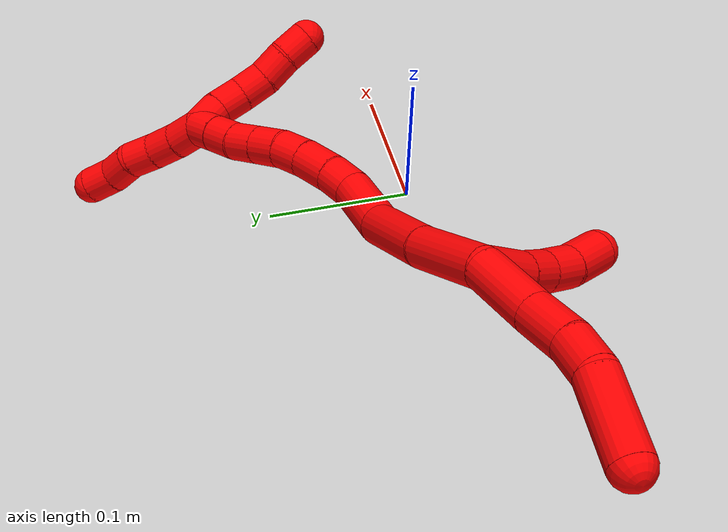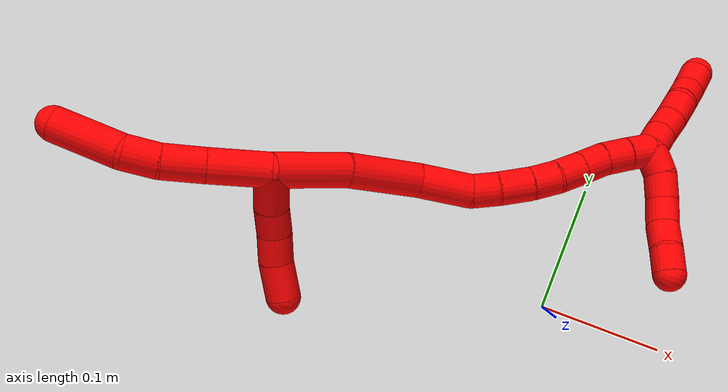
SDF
<sdf version="1.7">
 <world name="default">
  <model name="2">
   <static>0</static>
   <link name="2">
    <collision name="collision-cylinder-e_1_2_8">
     <pose>-0.00375 -0.004646 0.021303 0.21472 -0.170312 -0.018399</pose>
     <geometry><cylinder><radius>0.0125</radius><length>0.044247</length></cylinder></geometry>
     <surface>
      <friction><ode><mu>1.16</mu><mu2>1.16</mu2><slip1>0</slip1><slip2>0</slip2></ode></friction>
      <contact><ode><kp>1e+06</kp><kd>1</kd><max_vel>0</max_vel><min_depth>0.001</min_depth></ode></contact>
     </surface>
    </collision>
    <visual name="visual-cylinder-e_1_2_8">
     <pose>-0.00375 -0.004646 0.021303 0.21472 -0.170312 -0.018399</pose>
     <geometry><cylinder><radius>0.0125</radius><length>0.044247</length></cylinder></geometry>
     <material><ambient>1 0 0 1</ambient></material>
    </visual>
    <collision name="collision-cylinder-e_2_8_9">
     <pose>-0.008961 -0.013382 0.057338 0.27083 -0.095289 -0.012993</pose>
     <geometry><cylinder><radius>0.0125</radius><length>0.030718</length></cylinder></geometry>
     <surface>
      <friction><ode><mu>1.16</mu><mu2>1.16</mu2><slip1>0</slip1><slip2>0</slip2></ode></friction>
      <contact><ode><kp>1e+06</kp><kd>1</kd><max_vel>0</max_vel><min_depth>0.001</min_depth></ode></contact>
     </surface>
    </collision>
    <visual name="visual-cylinder-e_2_8_9">
     <pose>-0.008961 -0.013382 0.057338 0.27083 -0.095289 -0.012993</pose>
     <geometry><cylinder><radius>0.0125</radius><length>0.030718</length></cylinder></geometry>
     <material><ambient>1 0 0 1</ambient></material>
    </visual>
    <collision name="collision-cylinder-e_3_9_10">
     <pose>-0.010733 -0.018787 0.084493 0.10544 -0.024846 -0.001311</pose>
     <geometry><cylinder><radius>0.0125</radius><length>0.024992</length></cylinder></geometry>
     <surface>
      <friction><ode><mu>1.16</mu><mu2>1.16</mu2><slip1>0</slip1><slip2>0</slip2></ode></friction>
      <contact><ode><kp>1e+06</kp><kd>1</kd><max_vel>0</max_vel><min_depth>0.001</min_depth></ode></contact>
     </surface>
    </collision>
    <visual name="visual-cylinder-e_3_9_10">
     <pose>-0.010733 -0.018787 0.084493 0.10544 -0.024846 -0.001311</pose>
     <geometry><cylinder><radius>0.0125</radius><length>0.024992</length></cylinder></geometry>
     <material><ambient>1 0 0 1</ambient></material>
    </visual>
    <collision name="collision-cylinder-e_4_10_6">
     <pose>-0.013548 -0.015055 0.121294 -0.204124 -0.100263 0.010277</pose>
     <geometry><cylinder><radius>0.0125</radius><length>0.050042</length></cylinder></geometry>
     <surface>
      <friction><ode><mu>1.16</mu><mu2>1.16</mu2><slip1>0</slip1><slip2>0</slip2></ode></friction>
      <contact><ode><kp>1e+06</kp><kd>1</kd><max_vel>0</max_vel><min_depth>0.001</min_depth></ode></contact>
     </surface>
    </collision>
    <visual name="visual-cylinder-e_4_10_6">
     <pose>-0.013548 -0.015055 0.121294 -0.204124 -0.100263 0.010277</pose>
     <geometry><cylinder><radius>0.0125</radius><length>0.050042</length></cylinder></geometry>
     <material><ambient>1 0 0 1</ambient></material>
    </visual>
    <collision name="collision-cylinder-e_1_2_11">
     <pose>-0.014582 -0.00109 -0.00421 2.88836 -1.28097 -2.80325</pose>
     <geometry><cylinder><radius>0.0125</radius><length>0.030434</length></cylinder></geometry>
     <surface>
      <friction><ode><mu>1.16</mu><mu2>1.16</mu2><slip1>0</slip1><slip2>0</slip2></ode></friction>
      <contact><ode><kp>1e+06</kp><kd>1</kd><max_vel>0</max_vel><min_depth>0.001</min_depth></ode></contact>
     </surface>
    </collision>
    <visual name="visual-cylinder-e_1_2_11">
     <pose>-0.014582 -0.00109 -0.00421 2.88836 -1.28097 -2.80325</pose>
     <geometry><cylinder><radius>0.0125</radius><length>0.030434</length></cylinder></geometry>
     <material><ambient>1 0 0 1</ambient></material>
    </visual>
    <collision name="collision-cylinder-e_2_11_12">
     <pose>-0.038533 -0.003587 -0.012472 2.80712 -1.14142 -2.62732</pose>
     <geometry><cylinder><radius>0.0125</radius><length>0.020607</length></cylinder></geometry>
     <surface>
      <friction><ode><mu>1.16</mu><mu2>1.16</mu2><slip1>0</slip1><slip2>0</slip2></ode></friction>
      <contact><ode><kp>1e+06</kp><kd>1</kd><max_vel>0</max_vel><min_depth>0.001</min_depth></ode></contact>
     </surface>
    </collision>
    <visual name="visual-cylinder-e_2_11_12">
     <pose>-0.038533 -0.003587 -0.012472 2.80712 -1.14142 -2.62732</pose>
     <geometry><cylinder><radius>0.0125</radius><length>0.020607</length></cylinder></geometry>
     <material><ambient>1 0 0 1</ambient></material>
    </visual>
    <collision name="collision-cylinder-e_3_12_13">
     <pose>-0.057637 -0.008055 -0.020474 2.48261 -1.09656 -2.12076</pose>
     <geometry><cylinder><radius>0.0125</radius><length>0.021887</length></cylinder></geometry>
     <surface>
      <friction><ode><mu>1.16</mu><mu2>1.16</mu2><slip1>0</slip1><slip2>0</slip2></ode></friction>
      <contact><ode><kp>1e+06</kp><kd>1</kd><max_vel>0</max_vel><min_depth>0.001</min_depth></ode></contact>
     </surface>
    </collision>
    <visual name="visual-cylinder-e_3_12_13">
     <pose>-0.057637 -0.008055 -0.020474 2.48261 -1.09656 -2.12076</pose>
     <geometry><cylinder><radius>0.0125</radius><length>0.021887</length></cylinder></geometry>
     <material><ambient>1 0 0 1</ambient></material>
    </visual>
    <collision name="collision-cylinder-e_4_13_5">
     <pose>-0.077903 -0.016257 -0.0312 2.49234 -0.891392 -1.91425</pose>
     <geometry><cylinder><radius>0.0125</radius><length>0.027072</length></cylinder></geometry>
     <surface>
      <friction><ode><mu>1.16</mu><mu2>1.16</mu2><slip1>0</slip1><slip2>0</slip2></ode></friction>
      <contact><ode><kp>1e+06</kp><kd>1</kd><max_vel>0</max_vel><min_depth>0.001</min_depth></ode></contact>
     </surface>
    </collision>
    <visual name="visual-cylinder-e_4_13_5">
     <pose>-0.077903 -0.016257 -0.0312 2.49234 -0.891392 -1.91425</pose>
     <geometry><cylinder><radius>0.0125</radius><length>0.027072</length></cylinder></geometry>
     <material><ambient>1 0 0 1</ambient></material>
    </visual>
    <collision name="collision-cylinder-e_1_2_14">
     <pose>0.000173 0.013609 -0.024606 -2.63639 0.006146 -0.023808</pose>
     <geometry><cylinder><radius>0.0125</radius><length>0.056238</length></cylinder></geometry>
     <surface>
      <friction><ode><mu>1.16</mu><mu2>1.16</mu2><slip1>0</slip1><slip2>0</slip2></ode></friction>
      <contact><ode><kp>1e+06</kp><kd>1</kd><max_vel>0</max_vel><min_depth>0.001</min_depth></ode></contact>
     </surface>
    </collision>
    <visual name="visual-cylinder-e_1_2_14">
     <pose>0.000173 0.013609 -0.024606 -2.63639 0.006146 -0.023808</pose>
     <geometry><cylinder><radius>0.0125</radius><length>0.056238</length></cylinder></geometry>
     <material><ambient>1 0 0 1</ambient></material>
    </visual>
    <collision name="collision-cylinder-e_2_14_15">
     <pose>-0.002301 0.038827 -0.075325 -2.72326 -0.092336 0.42862</pose>
     <geometry><cylinder><radius>0.0125</radius><length>0.0574</length></cylinder></geometry>
     <surface>
      <friction><ode><mu>1.16</mu><mu2>1.16</mu2><slip1>0</slip1><slip2>0</slip2></ode></friction>
      <contact><ode><kp>1e+06</kp><kd>1</kd><max_vel>0</max_vel><min_depth>0.001</min_depth></ode></contact>
     </surface>
    </collision>
    <visual name="visual-cylinder-e_2_14_15">
     <pose>-0.002301 0.038827 -0.075325 -2.72326 -0.092336 0.42862</pose>
     <geometry><cylinder><radius>0.0125</radius><length>0.0574</length></cylinder></geometry>
     <material><ambient>1 0 0 1</ambient></material>
    </visual>
    <collision name="collision-cylinder-e_3_15_16">
     <pose>-0.003616 0.053123 -0.121446 -3.00809 0.06585 -0.915602</pose>
     <geometry><cylinder><radius>0.0125</radius><length>0.040462</length></cylinder></geometry>
     <surface>
      <friction><ode><mu>1.16</mu><mu2>1.16</mu2><slip1>0</slip1><slip2>0</slip2></ode></friction>
      <contact><ode><kp>1e+06</kp><kd>1</kd><max_vel>0</max_vel><min_depth>0.001</min_depth></ode></contact>
     </surface>
    </collision>
    <visual name="visual-cylinder-e_3_15_16">
     <pose>-0.003616 0.053123 -0.121446 -3.00809 0.06585 -0.915602</pose>
     <geometry><cylinder><radius>0.0125</radius><length>0.040462</length></cylinder></geometry>
     <material><ambient>1 0 0 1</ambient></material>
    </visual>
    <collision name="collision-cylinder-e_4_16_17">
     <pose>0.001249 0.058064 -0.150541 -2.89853 0.360872 -1.96165</pose>
     <geometry><cylinder><radius>0.0125</radius><length>0.020014</length></cylinder></geometry>
     <surface>
      <friction><ode><mu>1.16</mu><mu2>1.16</mu2><slip1>0</slip1><slip2>0</slip2></ode></friction>
      <contact><ode><kp>1e+06</kp><kd>1</kd><max_vel>0</max_vel><min_depth>0.001</min_depth></ode></contact>
     </surface>
    </collision>
    <visual name="visual-cylinder-e_4_16_17">
     <pose>0.001249 0.058064 -0.150541 -2.89853 0.360872 -1.96165</pose>
     <geometry><cylinder><radius>0.0125</radius><length>0.020014</length></cylinder></geometry>
     <material><ambient>1 0 0 1</ambient></material>
    </visual>
    <collision name="collision-cylinder-e_5_17_18">
     <pose>0.008995 0.064351 -0.170577 -2.78859 0.346495 -1.55181</pose>
     <geometry><cylinder><radius>0.0125</radius><length>0.024812</length></cylinder></geometry>
     <surface>
      <friction><ode><mu>1.16</mu><mu2>1.16</mu2><slip1>0</slip1><slip2>0</slip2></ode></friction>
      <contact><ode><kp>1e+06</kp><kd>1</kd><max_vel>0</max_vel><min_depth>0.001</min_depth></ode></contact>
     </surface>
    </collision>
    <visual name="visual-cylinder-e_5_17_18">
     <pose>0.008995 0.064351 -0.170577 -2.78859 0.346495 -1.55181</pose>
     <geometry><cylinder><radius>0.0125</radius><length>0.024812</length></cylinder></geometry>
     <material><ambient>1 0 0 1</ambient></material>
    </visual>
    <collision name="collision-cylinder-e_6_18_19">
     <pose>0.016957 0.072557 -0.189995 -2.68386 0.377949 -1.37486</pose>
     <geometry><cylinder><radius>0.0125</radius><length>0.020316</length></cylinder></geometry>
     <surface>
      <friction><ode><mu>1.16</mu><mu2>1.16</mu2><slip1>0</slip1><slip2>0</slip2></ode></friction>
      <contact><ode><kp>1e+06</kp><kd>1</kd><max_vel>0</max_vel><min_depth>0.001</min_depth></ode></contact>
     </surface>
    </collision>
    <visual name="visual-cylinder-e_6_18_19">
     <pose>0.016957 0.072557 -0.189995 -2.68386 0.377949 -1.37486</pose>
     <geometry><cylinder><radius>0.0125</radius><length>0.020316</length></cylinder></geometry>
     <material><ambient>1 0 0 1</ambient></material>
    </visual>
    <collision name="collision-cylinder-e_7_19_20">
     <pose>0.023892 0.082582 -0.206355 -2.50339 0.313627 -0.892694</pose>
     <geometry><cylinder><radius>0.0125</radius><length>0.020655</length></cylinder></geometry>
     <surface>
      <friction><ode><mu>1.16</mu><mu2>1.16</mu2><slip1>0</slip1><slip2>0</slip2></ode></friction>
      <contact><ode><kp>1e+06</kp><kd>1</kd><max_vel>0</max_vel><min_depth>0.001</min_depth></ode></contact>
     </surface>
    </collision>
    <visual name="visual-cylinder-e_7_19_20">
     <pose>0.023892 0.082582 -0.206355 -2.50339 0.313627 -0.892694</pose>
     <geometry><cylinder><radius>0.0125</radius><length>0.020655</length></cylinder></geometry>
     <material><ambient>1 0 0 1</ambient></material>
    </visual>
    <collision name="collision-cylinder-e_8_20_21">
     <pose>0.030396 0.094176 -0.221743 -2.48804 0.337844 -0.93241</pose>
     <geometry><cylinder><radius>0.0125</radius><length>0.020019</length></cylinder></geometry>
     <surface>
      <friction><ode><mu>1.16</mu><mu2>1.16</mu2><slip1>0</slip1><slip2>0</slip2></ode></friction>
      <contact><ode><kp>1e+06</kp><kd>1</kd><max_vel>0</max_vel><min_depth>0.001</min_depth></ode></contact>
     </surface>
    </collision>
    <visual name="visual-cylinder-e_8_20_21">
     <pose>0.030396 0.094176 -0.221743 -2.48804 0.337844 -0.93241</pose>
     <geometry><cylinder><radius>0.0125</radius><length>0.020019</length></cylinder></geometry>
     <material><ambient>1 0 0 1</ambient></material>
    </visual>
    <collision name="collision-cylinder-e_9_21_22">
     <pose>0.036625 0.104363 -0.237725 -2.65901 0.295145 -1.08681</pose>
     <geometry><cylinder><radius>0.0125</radius><length>0.020022</length></cylinder></geometry>
     <surface>
      <friction><ode><mu>1.16</mu><mu2>1.16</mu2><slip1>0</slip1><slip2>0</slip2></ode></friction>
      <contact><ode><kp>1e+06</kp><kd>1</kd><max_vel>0</max_vel><min_depth>0.001</min_depth></ode></contact>
     </surface>
    </collision>
    <visual name="visual-cylinder-e_9_21_22">
     <pose>0.036625 0.104363 -0.237725 -2.65901 0.295145 -1.08681</pose>
     <geometry><cylinder><radius>0.0125</radius><length>0.020022</length></cylinder></geometry>
     <material><ambient>1 0 0 1</ambient></material>
    </visual>
    <collision name="collision-cylinder-e_10_22_1">
     <pose>0.041931 0.113407 -0.254796 -2.64993 0.240916 -0.898973</pose>
     <geometry><cylinder><radius>0.0125</radius><length>0.020062</length></cylinder></geometry>
     <surface>
      <friction><ode><mu>1.16</mu><mu2>1.16</mu2><slip1>0</slip1><slip2>0</slip2></ode></friction>
      <contact><ode><kp>1e+06</kp><kd>1</kd><max_vel>0</max_vel><min_depth>0.001</min_depth></ode></contact>
     </surface>
    </collision>
    <visual name="visual-cylinder-e_10_22_1">
     <pose>0.041931 0.113407 -0.254796 -2.64993 0.240916 -0.898973</pose>
     <geometry><cylinder><radius>0.0125</radius><length>0.020062</length></cylinder></geometry>
     <material><ambient>1 0 0 1</ambient></material>
    </visual>
    <collision name="collision-cylinder-e_1_1_23">
     <pose>0.046299 0.127285 -0.266544 -1.899 0.198769 -0.2768</pose>
     <geometry><cylinder><radius>0.0125</radius><length>0.02</length></cylinder></geometry>
     <surface>
      <friction><ode><mu>1.16</mu><mu2>1.16</mu2><slip1>0</slip1><slip2>0</slip2></ode></friction>
      <contact><ode><kp>1e+06</kp><kd>1</kd><max_vel>0</max_vel><min_depth>0.001</min_depth></ode></contact>
     </surface>
    </collision>
    <visual name="visual-cylinder-e_1_1_23">
     <pose>0.046299 0.127285 -0.266544 -1.899 0.198769 -0.2768</pose>
     <geometry><cylinder><radius>0.0125</radius><length>0.02</length></cylinder></geometry>
     <material><ambient>1 0 0 1</ambient></material>
    </visual>
    <collision name="collision-cylinder-e_2_23_24">
     <pose>0.050904 0.145492 -0.273364 -1.95993 0.266187 -0.394024</pose>
     <geometry><cylinder><radius>0.0125</radius><length>0.02</length></cylinder></geometry>
     <surface>
      <friction><ode><mu>1.16</mu><mu2>1.16</mu2><slip1>0</slip1><slip2>0</slip2></ode></friction>
      <contact><ode><kp>1e+06</kp><kd>1</kd><max_vel>0</max_vel><min_depth>0.001</min_depth></ode></contact>
     </surface>
    </collision>
    <visual name="visual-cylinder-e_2_23_24">
     <pose>0.050904 0.145492 -0.273364 -1.95993 0.266187 -0.394024</pose>
     <geometry><cylinder><radius>0.0125</radius><length>0.02</length></cylinder></geometry>
     <material><ambient>1 0 0 1</ambient></material>
    </visual>
    <collision name="collision-cylinder-e_3_24_25">
     <pose>0.057365 0.163143 -0.280058 -1.90546 0.393098 -0.546129</pose>
     <geometry><cylinder><radius>0.0125</radius><length>0.02</length></cylinder></geometry>
     <surface>
      <friction><ode><mu>1.16</mu><mu2>1.16</mu2><slip1>0</slip1><slip2>0</slip2></ode></friction>
      <contact><ode><kp>1e+06</kp><kd>1</kd><max_vel>0</max_vel><min_depth>0.001</min_depth></ode></contact>
     </surface>
    </collision>
    <visual name="visual-cylinder-e_3_24_25">
     <pose>0.057365 0.163143 -0.280058 -1.90546 0.393098 -0.546129</pose>
     <geometry><cylinder><radius>0.0125</radius><length>0.02</length></cylinder></geometry>
     <material><ambient>1 0 0 1</ambient></material>
    </visual>
    <collision name="collision-cylinder-e_4_25_26">
     <pose>0.061766 0.181328 -0.286283 -1.89609 0.057122 -0.07953</pose>
     <geometry><cylinder><radius>0.0125</radius><length>0.02</length></cylinder></geometry>
     <surface>
      <friction><ode><mu>1.16</mu><mu2>1.16</mu2><slip1>0</slip1><slip2>0</slip2></ode></friction>
      <contact><ode><kp>1e+06</kp><kd>1</kd><max_vel>0</max_vel><min_depth>0.001</min_depth></ode></contact>
     </surface>
    </collision>
    <visual name="visual-cylinder-e_4_25_26">
     <pose>0.061766 0.181328 -0.286283 -1.89609 0.057122 -0.07953</pose>
     <geometry><cylinder><radius>0.0125</radius><length>0.02</length></cylinder></geometry>
     <material><ambient>1 0 0 1</ambient></material>
    </visual>
    <collision name="collision-cylinder-e_5_26_4">
     <pose>0.065773 0.199816 -0.292059 -1.8497 0.350781 -0.46178</pose>
     <geometry><cylinder><radius>0.0125</radius><length>0.02</length></cylinder></geometry>
     <surface>
      <friction><ode><mu>1.16</mu><mu2>1.16</mu2><slip1>0</slip1><slip2>0</slip2></ode></friction>
      <contact><ode><kp>1e+06</kp><kd>1</kd><max_vel>0</max_vel><min_depth>0.001</min_depth></ode></contact>
     </surface>
    </collision>
    <visual name="visual-cylinder-e_5_26_4">
     <pose>0.065773 0.199816 -0.292059 -1.8497 0.350781 -0.46178</pose>
     <geometry><cylinder><radius>0.0125</radius><length>0.02</length></cylinder></geometry>
     <material><ambient>1 0 0 1</ambient></material>
    </visual>
    <collision name="collision-cylinder-e_1_1_27">
     <pose>0.03955 0.111698 -0.269501 2.34093 -0.497657 -1.08148</pose>
     <geometry><cylinder><radius>0.0125</radius><length>0.02</length></cylinder></geometry>
     <surface>
      <friction><ode><mu>1.16</mu><mu2>1.16</mu2><slip1>0</slip1><slip2>0</slip2></ode></friction>
      <contact><ode><kp>1e+06</kp><kd>1</kd><max_vel>0</max_vel><min_depth>0.001</min_depth></ode></contact>
     </surface>
    </collision>
    <visual name="visual-cylinder-e_1_1_27">
     <pose>0.03955 0.111698 -0.269501 2.34093 -0.497657 -1.08148</pose>
     <geometry><cylinder><radius>0.0125</radius><length>0.02</length></cylinder></geometry>
     <material><ambient>1 0 0 1</ambient></material>
    </visual>
    <collision name="collision-cylinder-e_2_27_28">
     <pose>0.028976 0.097966 -0.278972 1.99495 -0.618735 -0.919346</pose>
     <geometry><cylinder><radius>0.0125</radius><length>0.02</length></cylinder></geometry>
     <surface>
      <friction><ode><mu>1.16</mu><mu2>1.16</mu2><slip1>0</slip1><slip2>0</slip2></ode></friction>
      <contact><ode><kp>1e+06</kp><kd>1</kd><max_vel>0</max_vel><min_depth>0.001</min_depth></ode></contact>
     </surface>
    </collision>
    <visual name="visual-cylinder-e_2_27_28">
     <pose>0.028976 0.097966 -0.278972 1.99495 -0.618735 -0.919346</pose>
     <geometry><cylinder><radius>0.0125</radius><length>0.02</length></cylinder></geometry>
     <material><ambient>1 0 0 1</ambient></material>
    </visual>
    <collision name="collision-cylinder-e_3_28_29">
     <pose>0.018405 0.082013 -0.284443 1.81432 -0.497392 -0.628052</pose>
     <geometry><cylinder><radius>0.0125</radius><length>0.02</length></cylinder></geometry>
     <surface>
      <friction><ode><mu>1.16</mu><mu2>1.16</mu2><slip1>0</slip1><slip2>0</slip2></ode></friction>
      <contact><ode><kp>1e+06</kp><kd>1</kd><max_vel>0</max_vel><min_depth>0.001</min_depth></ode></contact>
     </surface>
    </collision>
    <visual name="visual-cylinder-e_3_28_29">
     <pose>0.018405 0.082013 -0.284443 1.81432 -0.497392 -0.628052</pose>
     <geometry><cylinder><radius>0.0125</radius><length>0.02</length></cylinder></geometry>
     <material><ambient>1 0 0 1</ambient></material>
    </visual>
    <collision name="collision-cylinder-e_4_29_30">
     <pose>0.011041 0.064139 -0.289002 1.82614 -0.262278 -0.338231</pose>
     <geometry><cylinder><radius>0.0125</radius><length>0.02</length></cylinder></geometry>
     <surface>
      <friction><ode><mu>1.16</mu><mu2>1.16</mu2><slip1>0</slip1><slip2>0</slip2></ode></friction>
      <contact><ode><kp>1e+06</kp><kd>1</kd><max_vel>0</max_vel><min_depth>0.001</min_depth></ode></contact>
     </surface>
    </collision>
    <visual name="visual-cylinder-e_4_29_30">
     <pose>0.011041 0.064139 -0.289002 1.82614 -0.262278 -0.338231</pose>
     <geometry><cylinder><radius>0.0125</radius><length>0.02</length></cylinder></geometry>
     <material><ambient>1 0 0 1</ambient></material>
    </visual>
    <collision name="collision-cylinder-e_5_30_3">
     <pose>0.004437 0.046092 -0.294301 1.8883 -0.412674 -0.56288</pose>
     <geometry><cylinder><radius>0.0125</radius><length>0.02</length></cylinder></geometry>
     <surface>
      <friction><ode><mu>1.16</mu><mu2>1.16</mu2><slip1>0</slip1><slip2>0</slip2></ode></friction>
      <contact><ode><kp>1e+06</kp><kd>1</kd><max_vel>0</max_vel><min_depth>0.001</min_depth></ode></contact>
     </surface>
    </collision>
    <visual name="visual-cylinder-e_5_30_3">
     <pose>0.004437 0.046092 -0.294301 1.8883 -0.412674 -0.56288</pose>
     <geometry><cylinder><radius>0.0125</radius><length>0.02</length></cylinder></geometry>
     <material><ambient>1 0 0 1</ambient></material>
    </visual>
    <collision name="collision-sphere-3">
     <pose>0.000427 0.037389 -0.297161 0 -0 0</pose>
     <geometry><sphere><radius>0.0125</radius></sphere></geometry>
     <surface>
      <friction><ode><mu>1.16</mu><mu2>1.16</mu2><slip1>0</slip1><slip2>0</slip2></ode></friction>
      <contact><ode><kp>1e+06</kp><kd>1</kd><max_vel>0</max_vel><min_depth>0.001</min_depth></ode></contact>
     </surface>
    </collision>
    <visual name="visual-sphere-3">
     <pose>0.000427 0.037389 -0.297161 0 -0 0</pose>
     <geometry><sphere><radius>0.0125</radius></sphere></geometry>
     <material><ambient>1 0 0 1</ambient></material>
    </visual>
    <collision name="collision-sphere-30">
     <pose>0.008448 0.054794 -0.291441 0 -0 0</pose>
     <geometry><sphere><radius>0.0125</radius></sphere></geometry>
     <surface>
      <friction><ode><mu>1.16</mu><mu2>1.16</mu2><slip1>0</slip1><slip2>0</slip2></ode></friction>
      <contact><ode><kp>1e+06</kp><kd>1</kd><max_vel>0</max_vel><min_depth>0.001</min_depth></ode></contact>
     </surface>
    </collision>
    <visual name="visual-sphere-30">
     <pose>0.008448 0.054794 -0.291441 0 -0 0</pose>
     <geometry><sphere><radius>0.0125</radius></sphere></geometry>
     <material><ambient>1 0 0 1</ambient></material>
    </visual>
    <collision name="collision-sphere-29">
     <pose>0.013634 0.073484 -0.286563 0 -0 0</pose>
     <geometry><sphere><radius>0.0125</radius></sphere></geometry>
     <surface>
      <friction><ode><mu>1.16</mu><mu2>1.16</mu2><slip1>0</slip1><slip2>0</slip2></ode></friction>
      <contact><ode><kp>1e+06</kp><kd>1</kd><max_vel>0</max_vel><min_depth>0.001</min_depth></ode></contact>
     </surface>
    </collision>
    <visual name="visual-sphere-29">
     <pose>0.013634 0.073484 -0.286563 0 -0 0</pose>
     <geometry><sphere><radius>0.0125</radius></sphere></geometry>
     <material><ambient>1 0 0 1</ambient></material>
    </visual>
    <collision name="collision-sphere-28">
     <pose>0.023176 0.090542 -0.282324 0 -0 0</pose>
     <geometry><sphere><radius>0.0125</radius></sphere></geometry>
     <surface>
      <friction><ode><mu>1.16</mu><mu2>1.16</mu2><slip1>0</slip1><slip2>0</slip2></ode></friction>
      <contact><ode><kp>1e+06</kp><kd>1</kd><max_vel>0</max_vel><min_depth>0.001</min_depth></ode></contact>
     </surface>
    </collision>
    <visual name="visual-sphere-28">
     <pose>0.023176 0.090542 -0.282324 0 -0 0</pose>
     <geometry><sphere><radius>0.0125</radius></sphere></geometry>
     <material><ambient>1 0 0 1</ambient></material>
    </visual>
    <collision name="collision-sphere-27">
     <pose>0.034777 0.105391 -0.275619 0 -0 0</pose>
     <geometry><sphere><radius>0.0125</radius></sphere></geometry>
     <surface>
      <friction><ode><mu>1.16</mu><mu2>1.16</mu2><slip1>0</slip1><slip2>0</slip2></ode></friction>
      <contact><ode><kp>1e+06</kp><kd>1</kd><max_vel>0</max_vel><min_depth>0.001</min_depth></ode></contact>
     </surface>
    </collision>
    <visual name="visual-sphere-27">
     <pose>0.034777 0.105391 -0.275619 0 -0 0</pose>
     <geometry><sphere><radius>0.0125</radius></sphere></geometry>
     <material><ambient>1 0 0 1</ambient></material>
    </visual>
    <collision name="collision-sphere-4">
     <pose>0.06921 0.208844 -0.294644 0 -0 0</pose>
     <geometry><sphere><radius>0.0125</radius></sphere></geometry>
     <surface>
      <friction><ode><mu>1.16</mu><mu2>1.16</mu2><slip1>0</slip1><slip2>0</slip2></ode></friction>
      <contact><ode><kp>1e+06</kp><kd>1</kd><max_vel>0</max_vel><min_depth>0.001</min_depth></ode></contact>
     </surface>
    </collision>
    <visual name="visual-sphere-4">
     <pose>0.06921 0.208844 -0.294644 0 -0 0</pose>
     <geometry><sphere><radius>0.0125</radius></sphere></geometry>
     <material><ambient>1 0 0 1</ambient></material>
    </visual>
    <collision name="collision-sphere-26">
     <pose>0.062337 0.190788 -0.289474 0 -0 0</pose>
     <geometry><sphere><radius>0.0125</radius></sphere></geometry>
     <surface>
      <friction><ode><mu>1.16</mu><mu2>1.16</mu2><slip1>0</slip1><slip2>0</slip2></ode></friction>
      <contact><ode><kp>1e+06</kp><kd>1</kd><max_vel>0</max_vel><min_depth>0.001</min_depth></ode></contact>
     </surface>
    </collision>
    <visual name="visual-sphere-26">
     <pose>0.062337 0.190788 -0.289474 0 -0 0</pose>
     <geometry><sphere><radius>0.0125</radius></sphere></geometry>
     <material><ambient>1 0 0 1</ambient></material>
    </visual>
    <collision name="collision-sphere-25">
     <pose>0.061195 0.171868 -0.283092 0 -0 0</pose>
     <geometry><sphere><radius>0.0125</radius></sphere></geometry>
     <surface>
      <friction><ode><mu>1.16</mu><mu2>1.16</mu2><slip1>0</slip1><slip2>0</slip2></ode></friction>
      <contact><ode><kp>1e+06</kp><kd>1</kd><max_vel>0</max_vel><min_depth>0.001</min_depth></ode></contact>
     </surface>
    </collision>
    <visual name="visual-sphere-25">
     <pose>0.061195 0.171868 -0.283092 0 -0 0</pose>
     <geometry><sphere><radius>0.0125</radius></sphere></geometry>
     <material><ambient>1 0 0 1</ambient></material>
    </visual>
    <collision name="collision-sphere-24">
     <pose>0.053534 0.154418 -0.277024 0 -0 0</pose>
     <geometry><sphere><radius>0.0125</radius></sphere></geometry>
     <surface>
      <friction><ode><mu>1.16</mu><mu2>1.16</mu2><slip1>0</slip1><slip2>0</slip2></ode></friction>
      <contact><ode><kp>1e+06</kp><kd>1</kd><max_vel>0</max_vel><min_depth>0.001</min_depth></ode></contact>
     </surface>
    </collision>
    <visual name="visual-sphere-24">
     <pose>0.053534 0.154418 -0.277024 0 -0 0</pose>
     <geometry><sphere><radius>0.0125</radius></sphere></geometry>
     <material><ambient>1 0 0 1</ambient></material>
    </visual>
    <collision name="collision-sphere-23">
     <pose>0.048273 0.136565 -0.269704 0 -0 0</pose>
     <geometry><sphere><radius>0.0125</radius></sphere></geometry>
     <surface>
      <friction><ode><mu>1.16</mu><mu2>1.16</mu2><slip1>0</slip1><slip2>0</slip2></ode></friction>
      <contact><ode><kp>1e+06</kp><kd>1</kd><max_vel>0</max_vel><min_depth>0.001</min_depth></ode></contact>
     </surface>
    </collision>
    <visual name="visual-sphere-23">
     <pose>0.048273 0.136565 -0.269704 0 -0 0</pose>
     <geometry><sphere><radius>0.0125</radius></sphere></geometry>
     <material><ambient>1 0 0 1</ambient></material>
    </visual>
    <collision name="collision-sphere-1">
     <pose>0.044324 0.118006 -0.263384 0 -0 0</pose>
     <geometry><sphere><radius>0.0125</radius></sphere></geometry>
     <surface>
      <friction><ode><mu>1.16</mu><mu2>1.16</mu2><slip1>0</slip1><slip2>0</slip2></ode></friction>
      <contact><ode><kp>1e+06</kp><kd>1</kd><max_vel>0</max_vel><min_depth>0.001</min_depth></ode></contact>
     </surface>
    </collision>
    <visual name="visual-sphere-1">
     <pose>0.044324 0.118006 -0.263384 0 -0 0</pose>
     <geometry><sphere><radius>0.0125</radius></sphere></geometry>
     <material><ambient>1 0 0 1</ambient></material>
    </visual>
    <collision name="collision-sphere-22">
     <pose>0.039537 0.108808 -0.246209 0 -0 0</pose>
     <geometry><sphere><radius>0.0125</radius></sphere></geometry>
     <surface>
      <friction><ode><mu>1.16</mu><mu2>1.16</mu2><slip1>0</slip1><slip2>0</slip2></ode></friction>
      <contact><ode><kp>1e+06</kp><kd>1</kd><max_vel>0</max_vel><min_depth>0.001</min_depth></ode></contact>
     </surface>
    </collision>
    <visual name="visual-sphere-22">
     <pose>0.039537 0.108808 -0.246209 0 -0 0</pose>
     <geometry><sphere><radius>0.0125</radius></sphere></geometry>
     <material><ambient>1 0 0 1</ambient></material>
    </visual>
    <collision name="collision-sphere-21">
     <pose>0.033713 0.099918 -0.22924 0 -0 0</pose>
     <geometry><sphere><radius>0.0125</radius></sphere></geometry>
     <surface>
      <friction><ode><mu>1.16</mu><mu2>1.16</mu2><slip1>0</slip1><slip2>0</slip2></ode></friction>
      <contact><ode><kp>1e+06</kp><kd>1</kd><max_vel>0</max_vel><min_depth>0.001</min_depth></ode></contact>
     </surface>
    </collision>
    <visual name="visual-sphere-21">
     <pose>0.033713 0.099918 -0.22924 0 -0 0</pose>
     <geometry><sphere><radius>0.0125</radius></sphere></geometry>
     <material><ambient>1 0 0 1</ambient></material>
    </visual>
    <collision name="collision-sphere-11">
     <pose>-0.029165 -0.002179 -0.00842 0 -0 0</pose>
     <geometry><sphere><radius>0.0125</radius></sphere></geometry>
     <surface>
      <friction><ode><mu>1.16</mu><mu2>1.16</mu2><slip1>0</slip1><slip2>0</slip2></ode></friction>
      <contact><ode><kp>1e+06</kp><kd>1</kd><max_vel>0</max_vel><min_depth>0.001</min_depth></ode></contact>
     </surface>
    </collision>
    <visual name="visual-sphere-11">
     <pose>-0.029165 -0.002179 -0.00842 0 -0 0</pose>
     <geometry><sphere><radius>0.0125</radius></sphere></geometry>
     <material><ambient>1 0 0 1</ambient></material>
    </visual>
    <collision name="collision-sphere-6">
     <pose>-0.016052 -0.010009 0.145673 0 -0 0</pose>
     <geometry><sphere><radius>0.0125</radius></sphere></geometry>
     <surface>
      <friction><ode><mu>1.16</mu><mu2>1.16</mu2><slip1>0</slip1><slip2>0</slip2></ode></friction>
      <contact><ode><kp>1e+06</kp><kd>1</kd><max_vel>0</max_vel><min_depth>0.001</min_depth></ode></contact>
     </surface>
    </collision>
    <visual name="visual-sphere-6">
     <pose>-0.016052 -0.010009 0.145673 0 -0 0</pose>
     <geometry><sphere><radius>0.0125</radius></sphere></geometry>
     <material><ambient>1 0 0 1</ambient></material>
    </visual>
    <collision name="collision-sphere-10">
     <pose>-0.011043 -0.020102 0.096916 0 -0 0</pose>
     <geometry><sphere><radius>0.0125</radius></sphere></geometry>
     <surface>
      <friction><ode><mu>1.16</mu><mu2>1.16</mu2><slip1>0</slip1><slip2>0</slip2></ode></friction>
      <contact><ode><kp>1e+06</kp><kd>1</kd><max_vel>0</max_vel><min_depth>0.001</min_depth></ode></contact>
     </surface>
    </collision>
    <visual name="visual-sphere-10">
     <pose>-0.011043 -0.020102 0.096916 0 -0 0</pose>
     <geometry><sphere><radius>0.0125</radius></sphere></geometry>
     <material><ambient>1 0 0 1</ambient></material>
    </visual>
    <collision name="collision-sphere-9">
     <pose>-0.010422 -0.017472 0.07207 0 -0 0</pose>
     <geometry><sphere><radius>0.0125</radius></sphere></geometry>
     <surface>
      <friction><ode><mu>1.16</mu><mu2>1.16</mu2><slip1>0</slip1><slip2>0</slip2></ode></friction>
      <contact><ode><kp>1e+06</kp><kd>1</kd><max_vel>0</max_vel><min_depth>0.001</min_depth></ode></contact>
     </surface>
    </collision>
    <visual name="visual-sphere-9">
     <pose>-0.010422 -0.017472 0.07207 0 -0 0</pose>
     <geometry><sphere><radius>0.0125</radius></sphere></geometry>
     <material><ambient>1 0 0 1</ambient></material>
    </visual>
    <collision name="collision-sphere-2">
     <geometry><sphere><radius>0.0125</radius></sphere></geometry>
     <surface>
      <friction><ode><mu>1.16</mu><mu2>1.16</mu2><slip1>0</slip1><slip2>0</slip2></ode></friction>
      <contact><ode><kp>1e+06</kp><kd>1</kd><max_vel>0</max_vel><min_depth>0.001</min_depth></ode></contact>
     </surface>
    </collision>
    <visual name="visual-sphere-2">
     <geometry><sphere><radius>0.0125</radius></sphere></geometry>
     <material><ambient>1 0 0 1</ambient></material>
    </visual>
    <collision name="collision-sphere-19">
     <pose>0.020706 0.076729 -0.198465 0 -0 0</pose>
     <geometry><sphere><radius>0.0125</radius></sphere></geometry>
     <surface>
      <friction><ode><mu>1.16</mu><mu2>1.16</mu2><slip1>0</slip1><slip2>0</slip2></ode></friction>
      <contact><ode><kp>1e+06</kp><kd>1</kd><max_vel>0</max_vel><min_depth>0.001</min_depth></ode></contact>
     </surface>
    </collision>
    <visual name="visual-sphere-19">
     <pose>0.020706 0.076729 -0.198465 0 -0 0</pose>
     <geometry><sphere><radius>0.0125</radius></sphere></geometry>
     <material><ambient>1 0 0 1</ambient></material>
    </visual>
    <collision name="collision-sphere-8">
     <pose>-0.007499 -0.009292 0.042606 0 -0 0</pose>
     <geometry><sphere><radius>0.0125</radius></sphere></geometry>
     <surface>
      <friction><ode><mu>1.16</mu><mu2>1.16</mu2><slip1>0</slip1><slip2>0</slip2></ode></friction>
      <contact><ode><kp>1e+06</kp><kd>1</kd><max_vel>0</max_vel><min_depth>0.001</min_depth></ode></contact>
     </surface>
    </collision>
    <visual name="visual-sphere-8">
     <pose>-0.007499 -0.009292 0.042606 0 -0 0</pose>
     <geometry><sphere><radius>0.0125</radius></sphere></geometry>
     <material><ambient>1 0 0 1</ambient></material>
    </visual>
    <collision name="collision-sphere-12">
     <pose>-0.047901 -0.004995 -0.016523 0 -0 0</pose>
     <geometry><sphere><radius>0.0125</radius></sphere></geometry>
     <surface>
      <friction><ode><mu>1.16</mu><mu2>1.16</mu2><slip1>0</slip1><slip2>0</slip2></ode></friction>
      <contact><ode><kp>1e+06</kp><kd>1</kd><max_vel>0</max_vel><min_depth>0.001</min_depth></ode></contact>
     </surface>
    </collision>
    <visual name="visual-sphere-12">
     <pose>-0.047901 -0.004995 -0.016523 0 -0 0</pose>
     <geometry><sphere><radius>0.0125</radius></sphere></geometry>
     <material><ambient>1 0 0 1</ambient></material>
    </visual>
    <collision name="collision-sphere-13">
     <pose>-0.067372 -0.011115 -0.024425 0 -0 0</pose>
     <geometry><sphere><radius>0.0125</radius></sphere></geometry>
     <surface>
      <friction><ode><mu>1.16</mu><mu2>1.16</mu2><slip1>0</slip1><slip2>0</slip2></ode></friction>
      <contact><ode><kp>1e+06</kp><kd>1</kd><max_vel>0</max_vel><min_depth>0.001</min_depth></ode></contact>
     </surface>
    </collision>
    <visual name="visual-sphere-13">
     <pose>-0.067372 -0.011115 -0.024425 0 -0 0</pose>
     <geometry><sphere><radius>0.0125</radius></sphere></geometry>
     <material><ambient>1 0 0 1</ambient></material>
    </visual>
    <collision name="collision-sphere-5">
     <pose>-0.088433 -0.021399 -0.037975 0 -0 0</pose>
     <geometry><sphere><radius>0.0125</radius></sphere></geometry>
     <surface>
      <friction><ode><mu>1.16</mu><mu2>1.16</mu2><slip1>0</slip1><slip2>0</slip2></ode></friction>
      <contact><ode><kp>1e+06</kp><kd>1</kd><max_vel>0</max_vel><min_depth>0.001</min_depth></ode></contact>
     </surface>
    </collision>
    <visual name="visual-sphere-5">
     <pose>-0.088433 -0.021399 -0.037975 0 -0 0</pose>
     <geometry><sphere><radius>0.0125</radius></sphere></geometry>
     <material><ambient>1 0 0 1</ambient></material>
    </visual>
    <collision name="collision-sphere-14">
     <pose>0.000346 0.027218 -0.049211 0 -0 0</pose>
     <geometry><sphere><radius>0.0125</radius></sphere></geometry>
     <surface>
      <friction><ode><mu>1.16</mu><mu2>1.16</mu2><slip1>0</slip1><slip2>0</slip2></ode></friction>
      <contact><ode><kp>1e+06</kp><kd>1</kd><max_vel>0</max_vel><min_depth>0.001</min_depth></ode></contact>
     </surface>
    </collision>
    <visual name="visual-sphere-14">
     <pose>0.000346 0.027218 -0.049211 0 -0 0</pose>
     <geometry><sphere><radius>0.0125</radius></sphere></geometry>
     <material><ambient>1 0 0 1</ambient></material>
    </visual>
    <collision name="collision-sphere-15">
     <pose>-0.004947 0.050436 -0.101438 0 -0 0</pose>
     <geometry><sphere><radius>0.0125</radius></sphere></geometry>
     <surface>
      <friction><ode><mu>1.16</mu><mu2>1.16</mu2><slip1>0</slip1><slip2>0</slip2></ode></friction>
      <contact><ode><kp>1e+06</kp><kd>1</kd><max_vel>0</max_vel><min_depth>0.001</min_depth></ode></contact>
     </surface>
    </collision>
    <visual name="visual-sphere-15">
     <pose>-0.004947 0.050436 -0.101438 0 -0 0</pose>
     <geometry><sphere><radius>0.0125</radius></sphere></geometry>
     <material><ambient>1 0 0 1</ambient></material>
    </visual>
    <collision name="collision-sphere-16">
     <pose>-0.002284 0.05581 -0.141453 0 -0 0</pose>
     <geometry><sphere><radius>0.0125</radius></sphere></geometry>
     <surface>
      <friction><ode><mu>1.16</mu><mu2>1.16</mu2><slip1>0</slip1><slip2>0</slip2></ode></friction>
      <contact><ode><kp>1e+06</kp><kd>1</kd><max_vel>0</max_vel><min_depth>0.001</min_depth></ode></contact>
     </surface>
    </collision>
    <visual name="visual-sphere-16">
     <pose>-0.002284 0.05581 -0.141453 0 -0 0</pose>
     <geometry><sphere><radius>0.0125</radius></sphere></geometry>
     <material><ambient>1 0 0 1</ambient></material>
    </visual>
    <collision name="collision-sphere-17">
     <pose>0.004782 0.060317 -0.159628 0 -0 0</pose>
     <geometry><sphere><radius>0.0125</radius></sphere></geometry>
     <surface>
      <friction><ode><mu>1.16</mu><mu2>1.16</mu2><slip1>0</slip1><slip2>0</slip2></ode></friction>
      <contact><ode><kp>1e+06</kp><kd>1</kd><max_vel>0</max_vel><min_depth>0.001</min_depth></ode></contact>
     </surface>
    </collision>
    <visual name="visual-sphere-17">
     <pose>0.004782 0.060317 -0.159628 0 -0 0</pose>
     <geometry><sphere><radius>0.0125</radius></sphere></geometry>
     <material><ambient>1 0 0 1</ambient></material>
    </visual>
    <collision name="collision-sphere-18">
     <pose>0.013209 0.068385 -0.181526 0 -0 0</pose>
     <geometry><sphere><radius>0.0125</radius></sphere></geometry>
     <surface>
      <friction><ode><mu>1.16</mu><mu2>1.16</mu2><slip1>0</slip1><slip2>0</slip2></ode></friction>
      <contact><ode><kp>1e+06</kp><kd>1</kd><max_vel>0</max_vel><min_depth>0.001</min_depth></ode></contact>
     </surface>
    </collision>
    <visual name="visual-sphere-18">
     <pose>0.013209 0.068385 -0.181526 0 -0 0</pose>
     <geometry><sphere><radius>0.0125</radius></sphere></geometry>
     <material><ambient>1 0 0 1</ambient></material>
    </visual>
    <collision name="collision-sphere-20">
     <pose>0.027078 0.088434 -0.214245 0 -0 0</pose>
     <geometry><sphere><radius>0.0125</radius></sphere></geometry>
     <surface>
      <friction><ode><mu>1.16</mu><mu2>1.16</mu2><slip1>0</slip1><slip2>0</slip2></ode></friction>
      <contact><ode><kp>1e+06</kp><kd>1</kd><max_vel>0</max_vel><min_depth>0.001</min_depth></ode></contact>
     </surface>
    </collision>
    <visual name="visual-sphere-20">
     <pose>0.027078 0.088434 -0.214245 0 -0 0</pose>
     <geometry><sphere><radius>0.0125</radius></sphere></geometry>
     <material><ambient>1 0 0 1</ambient></material>
    </visual>
    <inertial>
     <pose>0.00626 0.052198 -0.11651 0 -0 0</pose>
     <mass>0.75</mass>
     <inertia>
      <ixx>5.3e-05</ixx>
      <ixy>0</ixy>
      <ixz>0</ixz>
      <iyy>-1.1e-05</iyy>
      <iyz>0</iyz>
      <izz>-2.6e-05</izz>
     </inertia>
    </inertial>
   </link>
   <pose>-0.22494 0.028512 0.167357 -1.41247 -0.666001 1.49372</pose>
  </model>
 </world>
</sdf>
